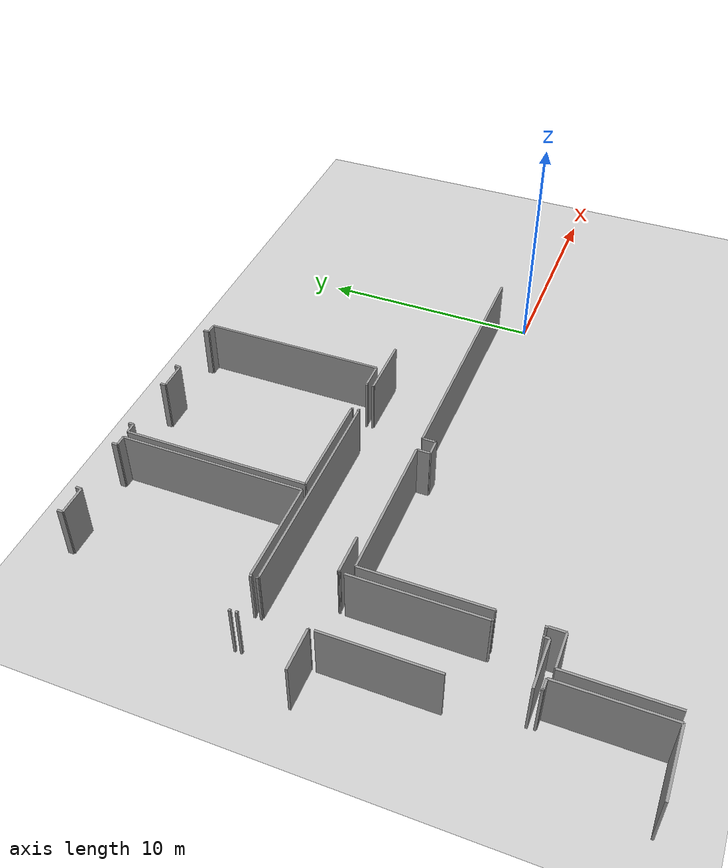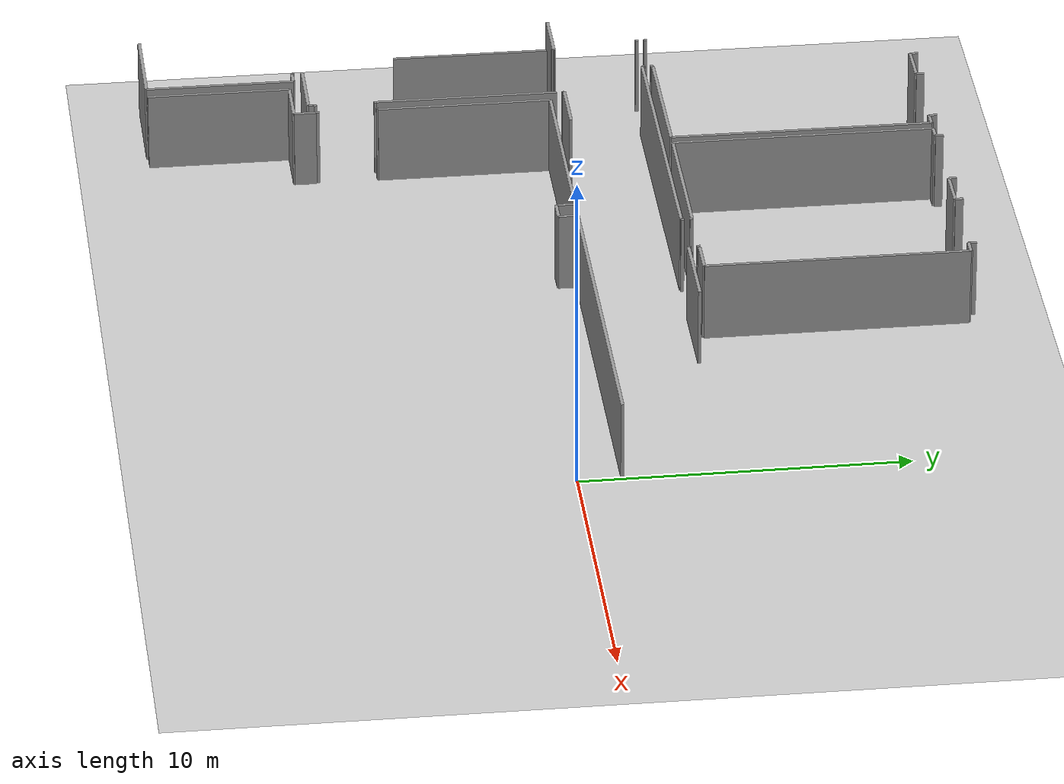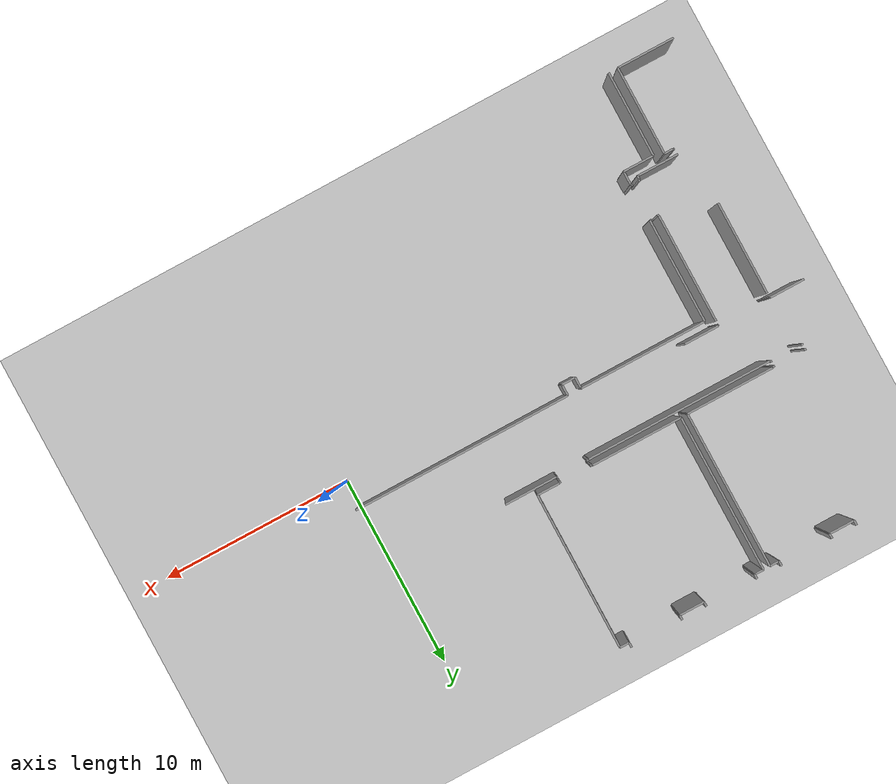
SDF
<sdf version="1.6">
 <world name="default">
  <model name="ground_plane">
   <static>1</static>
   <link name="link">
    <collision name="collision">
     <geometry><plane><normal>0 0 1</normal><size>100 100</size></plane></geometry>
     <surface><friction><ode><mu>100</mu><mu2>50</mu2></ode></friction></surface>
    </collision>
    <visual name="visual">
     <cast_shadows>0</cast_shadows>
     <geometry><plane><normal>0 0 1</normal><size>100 100</size></plane></geometry>
     <material>
      <script><uri>file://media/materials/scripts/gazebo.material</uri><name>Gazebo/Grey</name></script>
     </material>
    </visual>
   </link>
  </model>
  <model name="0510032258_A_40_1_105">
   <static>1</static>
   <link name="Wall_70">
    <collision name="Wall_70_Collision">
     <geometry><box><size>4.83623843887 0.1 2.5</size></box></geometry>
     <pose>2.41811921943 0 1.25 0 0 0</pose>
    </collision>
    <visual name="Wall_70_Visual">
     <pose>2.41811921943 0 1.25 0 0 0</pose>
     <geometry><box><size>4.83623843887 0.1 2.5</size></box></geometry>
     <material>
      <script><uri>file://media/materials/scripts/gazebo.material</uri><name>Gazebo/Grey</name></script>
      <ambient>1 1 1 1</ambient>
     </material>
    </visual>
    <pose>26.022080496 -16.3927990649 0 0 0 1.57079632679</pose>
   </link>
   <link name="Wall_71">
    <collision name="Wall_71_Collision">
     <geometry><box><size>5.62811261307 0.1 2.5</size></box></geometry>
     <pose>2.81405630654 0 1.25 0 0 0</pose>
    </collision>
    <visual name="Wall_71_Visual">
     <pose>2.81405630654 0 1.25 0 0 0</pose>
     <geometry><box><size>5.62811261307 0.1 2.5</size></box></geometry>
     <material>
      <script><uri>file://media/materials/scripts/gazebo.material</uri><name>Gazebo/Grey</name></script>
      <ambient>1 1 1 1</ambient>
     </material>
    </visual>
    <pose>28.7493647728 -11.5565606261 0 0 0 -1.57079632679</pose>
   </link>
   <link name="Wall_72">
    <collision name="Wall_72_Collision">
     <geometry><box><size>0.0212165870515 0.1 2.5</size></box></geometry>
     <pose>0.0106082935258 0 1.25 0 0 0</pose>
    </collision>
    <visual name="Wall_72_Visual">
     <pose>0.0106082935258 0 1.25 0 0 0</pose>
     <geometry><box><size>0.0212165870515 0.1 2.5</size></box></geometry>
     <material>
      <script><uri>file://media/materials/scripts/gazebo.material</uri><name>Gazebo/Grey</name></script>
      <ambient>1 1 1 1</ambient>
     </material>
    </visual>
    <pose>28.7493647728 -17.1846732392 0 0 0 0.0</pose>
   </link>
   <link name="Wall_73">
    <collision name="Wall_73_Collision">
     <geometry><box><size>0.0806738489684 0.1 2.5</size></box></geometry>
     <pose>0.0403369244842 0 1.25 0 0 0</pose>
    </collision>
    <visual name="Wall_73_Visual">
     <pose>0.0403369244842 0 1.25 0 0 0</pose>
     <geometry><box><size>0.0806738489684 0.1 2.5</size></box></geometry>
     <material>
      <script><uri>file://media/materials/scripts/gazebo.material</uri><name>Gazebo/Grey</name></script>
      <ambient>1 1 1 1</ambient>
     </material>
    </visual>
    <pose>28.7705813599 -17.1846732392 0 0 0 -1.57079632679</pose>
   </link>
   <link name="Wall_74">
    <collision name="Wall_74_Collision">
     <geometry><box><size>0.0815631669885 0.1 2.5</size></box></geometry>
     <pose>0.0407815834943 0 1.25 0 0 0</pose>
    </collision>
    <visual name="Wall_74_Visual">
     <pose>0.0407815834943 0 1.25 0 0 0</pose>
     <geometry><box><size>0.0815631669885 0.1 2.5</size></box></geometry>
     <material>
      <script><uri>file://media/materials/scripts/gazebo.material</uri><name>Gazebo/Grey</name></script>
      <ambient>1 1 1 1</ambient>
     </material>
    </visual>
    <pose>28.7705813599 -19.0433479012 0 0 0 -1.57079632679</pose>
   </link>
   <link name="Wall_75">
    <collision name="Wall_75_Collision">
     <geometry><box><size>0.0282040857811 0.1 2.5</size></box></geometry>
     <pose>0.0141020428905 0 1.25 0 0 0</pose>
    </collision>
    <visual name="Wall_75_Visual">
     <pose>0.0141020428905 0 1.25 0 0 0</pose>
     <geometry><box><size>0.0282040857811 0.1 2.5</size></box></geometry>
     <material>
      <script><uri>file://media/materials/scripts/gazebo.material</uri><name>Gazebo/Grey</name></script>
      <ambient>1 1 1 1</ambient>
     </material>
    </visual>
    <pose>28.7705813599 -19.1249110682 0 0 0 3.14159265359</pose>
   </link>
   <link name="Wall_76">
    <collision name="Wall_76_Collision">
     <geometry><box><size>0.179007012908 0.1 2.5</size></box></geometry>
     <pose>0.0895035064539 0 1.25 0 0 0</pose>
    </collision>
    <visual name="Wall_76_Visual">
     <pose>0.0895035064539 0 1.25 0 0 0</pose>
     <geometry><box><size>0.179007012908 0.1 2.5</size></box></geometry>
     <material>
      <script><uri>file://media/materials/scripts/gazebo.material</uri><name>Gazebo/Grey</name></script>
      <ambient>1 1 1 1</ambient>
     </material>
    </visual>
    <pose>28.7423772741 -19.1249110682 0 0 0 -1.57079632679</pose>
   </link>
   <link name="Wall_77">
    <collision name="Wall_77_Collision">
     <geometry><box><size>2.16320256124 0.1 2.5</size></box></geometry>
     <pose>1.08160128062 0 1.25 0 0 0</pose>
    </collision>
    <visual name="Wall_77_Visual">
     <pose>1.08160128062 0 1.25 0 0 0</pose>
     <geometry><box><size>2.16320256124 0.1 2.5</size></box></geometry>
     <material>
      <script><uri>file://media/materials/scripts/gazebo.material</uri><name>Gazebo/Grey</name></script>
      <ambient>1 1 1 1</ambient>
     </material>
    </visual>
    <pose>28.7423772741 -19.3039180811 0 0 0 3.14159265359</pose>
   </link>
   <link name="Wall_93">
    <collision name="Wall_93_Collision">
     <geometry><box><size>0.0722888504929 0.1 2.5</size></box></geometry>
     <pose>0.0361444252465 0 1.25 0 0 0</pose>
    </collision>
    <visual name="Wall_93_Visual">
     <pose>0.0361444252465 0 1.25 0 0 0</pose>
     <geometry><box><size>0.0722888504929 0.1 2.5</size></box></geometry>
     <material>
      <script><uri>file://media/materials/scripts/gazebo.material</uri><name>Gazebo/Grey</name></script>
      <ambient>1 1 1 1</ambient>
     </material>
    </visual>
    <pose>26.6078869804 -19.6111139343 0 0 0 0.0</pose>
   </link>
   <link name="Wall_94">
    <collision name="Wall_94_Collision">
     <geometry><box><size>0.0188027238541 0.1 2.5</size></box></geometry>
     <pose>0.00940136192703 0 1.25 0 0 0</pose>
    </collision>
    <visual name="Wall_94_Visual">
     <pose>0.00940136192703 0 1.25 0 0 0</pose>
     <geometry><box><size>0.0188027238541 0.1 2.5</size></box></geometry>
     <material>
      <script><uri>file://media/materials/scripts/gazebo.material</uri><name>Gazebo/Grey</name></script>
      <ambient>1 1 1 1</ambient>
     </material>
    </visual>
    <pose>26.6801758309 -19.6111139343 0 0 0 -1.57079632679</pose>
   </link>
   <link name="Wall_95">
    <collision name="Wall_95_Collision">
     <geometry><box><size>0.451392417929 0.1 2.5</size></box></geometry>
     <pose>0.225696208964 0 1.25 0 0 0</pose>
    </collision>
    <visual name="Wall_95_Visual">
     <pose>0.225696208964 0 1.25 0 0 0</pose>
     <geometry><box><size>0.451392417929 0.1 2.5</size></box></geometry>
     <material>
      <script><uri>file://media/materials/scripts/gazebo.material</uri><name>Gazebo/Grey</name></script>
      <ambient>1 1 1 1</ambient>
     </material>
    </visual>
    <pose>26.6801758309 -19.6299166582 0 0 0 0.0</pose>
   </link>
   <link name="Wall_96">
    <collision name="Wall_96_Collision">
     <geometry><box><size>4.58646712064 0.1 2.5</size></box></geometry>
     <pose>2.29323356032 0 1.25 0 0 0</pose>
    </collision>
    <visual name="Wall_96_Visual">
     <pose>2.29323356032 0 1.25 0 0 0</pose>
     <geometry><box><size>4.58646712064 0.1 2.5</size></box></geometry>
     <material>
      <script><uri>file://media/materials/scripts/gazebo.material</uri><name>Gazebo/Grey</name></script>
      <ambient>1 1 1 1</ambient>
     </material>
    </visual>
    <pose>27.1315682488 -19.6299166582 0 0 0 -1.57079632679</pose>
   </link>
   <link name="Wall_97">
    <collision name="Wall_97_Collision">
     <geometry><box><size>2.97261009093 0.1 2.5</size></box></geometry>
     <pose>1.48630504547 0 1.25 0 0 0</pose>
    </collision>
    <visual name="Wall_97_Visual">
     <pose>1.48630504547 0 1.25 0 0 0</pose>
     <geometry><box><size>2.97261009093 0.1 2.5</size></box></geometry>
     <material>
      <script><uri>file://media/materials/scripts/gazebo.material</uri><name>Gazebo/Grey</name></script>
      <ambient>1 1 1 1</ambient>
     </material>
    </visual>
    <pose>27.1315682488 -24.2163837788 0 0 0 3.14073787989</pose>
   </link>
   <link name="Wall_137">
    <collision name="Wall_137_Collision">
     <geometry><box><size>4.41775078768 0.1 2.5</size></box></geometry>
     <pose>2.20887539384 0 1.25 0 0 0</pose>
    </collision>
    <visual name="Wall_137_Visual">
     <pose>2.20887539384 0 1.25 0 0 0</pose>
     <geometry><box><size>4.41775078768 0.1 2.5</size></box></geometry>
     <material>
      <script><uri>file://media/materials/scripts/gazebo.material</uri><name>Gazebo/Grey</name></script>
      <ambient>1 1 1 1</ambient>
     </material>
    </visual>
    <pose>27.6227258868 -24.2157485517 0 0 0 1.57079632679</pose>
   </link>
   <link name="Wall_138">
    <collision name="Wall_138_Collision">
     <geometry><box><size>1.59175221059 0.1 2.5</size></box></geometry>
     <pose>0.795876105295 0 1.25 0 0 0</pose>
    </collision>
    <visual name="Wall_138_Visual">
     <pose>0.795876105295 0 1.25 0 0 0</pose>
     <geometry><box><size>1.59175221059 0.1 2.5</size></box></geometry>
     <material>
      <script><uri>file://media/materials/scripts/gazebo.material</uri><name>Gazebo/Grey</name></script>
      <ambient>1 1 1 1</ambient>
     </material>
    </visual>
    <pose>27.6227258868 -19.797997764 0 0 0 0.0</pose>
   </link>
   <link name="Wall_139">
    <collision name="Wall_139_Collision">
     <geometry><box><size>0.687569874987 0.1 2.5</size></box></geometry>
     <pose>0.343784937494 0 1.25 0 0 0</pose>
    </collision>
    <visual name="Wall_139_Visual">
     <pose>0.343784937494 0 1.25 0 0 0</pose>
     <geometry><box><size>0.687569874987 0.1 2.5</size></box></geometry>
     <material>
      <script><uri>file://media/materials/scripts/gazebo.material</uri><name>Gazebo/Grey</name></script>
      <ambient>1 1 1 1</ambient>
     </material>
    </visual>
    <pose>29.2144780974 -19.797997764 0 0 0 1.57079632679</pose>
   </link>
   <link name="Wall_140">
    <collision name="Wall_140_Collision">
     <geometry><box><size>0.0354456753735 0.1 2.5</size></box></geometry>
     <pose>0.0177228376868 0 1.25 0 0 0</pose>
    </collision>
    <visual name="Wall_140_Visual">
     <pose>0.0177228376868 0 1.25 0 0 0</pose>
     <geometry><box><size>0.0354456753735 0.1 2.5</size></box></geometry>
     <material>
      <script><uri>file://media/materials/scripts/gazebo.material</uri><name>Gazebo/Grey</name></script>
      <ambient>1 1 1 1</ambient>
     </material>
    </visual>
    <pose>29.2144780974 -19.110427889 0 0 0 3.14159265359</pose>
   </link>
   <link name="Wall_141">
    <collision name="Wall_141_Collision">
     <geometry><box><size>0.102144526883 0.1 2.5</size></box></geometry>
     <pose>0.0510722634414 0 1.25 0 0 0</pose>
    </collision>
    <visual name="Wall_141_Visual">
     <pose>0.0510722634414 0 1.25 0 0 0</pose>
     <geometry><box><size>0.102144526883 0.1 2.5</size></box></geometry>
     <material>
      <script><uri>file://media/materials/scripts/gazebo.material</uri><name>Gazebo/Grey</name></script>
      <ambient>1 1 1 1</ambient>
     </material>
    </visual>
    <pose>29.179032422 -19.110427889 0 0 0 1.57079632679</pose>
   </link>
   <link name="Wall_142">
    <collision name="Wall_142_Collision">
     <geometry><box><size>0.0491665819697 0.1 2.5</size></box></geometry>
     <pose>0.0245832909849 0 1.25 0 0 0</pose>
    </collision>
    <visual name="Wall_142_Visual">
     <pose>0.0245832909849 0 1.25 0 0 0</pose>
     <geometry><box><size>0.0491665819697 0.1 2.5</size></box></geometry>
     <material>
      <script><uri>file://media/materials/scripts/gazebo.material</uri><name>Gazebo/Grey</name></script>
      <ambient>1 1 1 1</ambient>
     </material>
    </visual>
    <pose>29.179032422 -17.2310448216 0 0 0 1.57079632679</pose>
   </link>
   <link name="Wall_143">
    <collision name="Wall_143_Collision">
     <geometry><box><size>0.0434495375546 0.1 2.5</size></box></geometry>
     <pose>0.0217247687773 0 1.25 0 0 0</pose>
    </collision>
    <visual name="Wall_143_Visual">
     <pose>0.0217247687773 0 1.25 0 0 0</pose>
     <geometry><box><size>0.0434495375546 0.1 2.5</size></box></geometry>
     <material>
      <script><uri>file://media/materials/scripts/gazebo.material</uri><name>Gazebo/Grey</name></script>
      <ambient>1 1 1 1</ambient>
     </material>
    </visual>
    <pose>29.179032422 -17.1818782397 0 0 0 0.0</pose>
   </link>
   <link name="Wall_144">
    <collision name="Wall_144_Collision">
     <geometry><box><size>5.38024697632 0.1 2.5</size></box></geometry>
     <pose>2.69012348816 0 1.25 0 0 0</pose>
    </collision>
    <visual name="Wall_144_Visual">
     <pose>2.69012348816 0 1.25 0 0 0</pose>
     <geometry><box><size>5.38024697632 0.1 2.5</size></box></geometry>
     <material>
      <script><uri>file://media/materials/scripts/gazebo.material</uri><name>Gazebo/Grey</name></script>
      <ambient>1 1 1 1</ambient>
     </material>
    </visual>
    <pose>29.2224819595 -17.1818782397 0 0 0 1.57079632679</pose>
   </link>
   <link name="Wall_145">
    <collision name="Wall_145_Collision">
     <geometry><box><size>6.60458379917 0.1 2.5</size></box></geometry>
     <pose>3.30229189958 0 1.25 0 0 0</pose>
    </collision>
    <visual name="Wall_145_Visual">
     <pose>3.30229189958 0 1.25 0 0 0</pose>
     <geometry><box><size>6.60458379917 0.1 2.5</size></box></geometry>
     <material>
      <script><uri>file://media/materials/scripts/gazebo.material</uri><name>Gazebo/Grey</name></script>
      <ambient>1 1 1 1</ambient>
     </material>
    </visual>
    <pose>29.2224819595 -11.8016312633 0 0 0 0.0</pose>
   </link>
   <link name="Wall_146">
    <collision name="Wall_146_Collision">
     <geometry><box><size>0.58237625775 0.1 2.5</size></box></geometry>
     <pose>0.291188128875 0 1.25 0 0 0</pose>
    </collision>
    <visual name="Wall_146_Visual">
     <pose>0.291188128875 0 1.25 0 0 0</pose>
     <geometry><box><size>0.58237625775 0.1 2.5</size></box></geometry>
     <material>
      <script><uri>file://media/materials/scripts/gazebo.material</uri><name>Gazebo/Grey</name></script>
      <ambient>1 1 1 1</ambient>
     </material>
    </visual>
    <pose>35.8270657587 -11.8016312633 0 0 0 -1.57079632679</pose>
   </link>
   <link name="Wall_147">
    <collision name="Wall_147_Collision">
     <geometry><box><size>0.702942372192 0.1 2.5</size></box></geometry>
     <pose>0.351471186096 0 1.25 0 0 0</pose>
    </collision>
    <visual name="Wall_147_Visual">
     <pose>0.351471186096 0 1.25 0 0 0</pose>
     <geometry><box><size>0.702942372192 0.1 2.5</size></box></geometry>
     <material>
      <script><uri>file://media/materials/scripts/gazebo.material</uri><name>Gazebo/Grey</name></script>
      <ambient>1 1 1 1</ambient>
     </material>
    </visual>
    <pose>35.8270657587 -12.3840075211 0 0 0 0.0</pose>
   </link>
   <link name="Wall_148">
    <collision name="Wall_148_Collision">
     <geometry><box><size>0.581359894298 0.1 2.5</size></box></geometry>
     <pose>0.290679947149 0 1.25 0 0 0</pose>
    </collision>
    <visual name="Wall_148_Visual">
     <pose>0.290679947149 0 1.25 0 0 0</pose>
     <geometry><box><size>0.581359894298 0.1 2.5</size></box></geometry>
     <material>
      <script><uri>file://media/materials/scripts/gazebo.material</uri><name>Gazebo/Grey</name></script>
      <ambient>1 1 1 1</ambient>
     </material>
    </visual>
    <pose>36.5300081309 -12.3840075211 0 0 0 1.57079632679</pose>
   </link>
   <link name="Wall_149">
    <collision name="Wall_149_Collision">
     <geometry><box><size>11.3100924891 0.1 2.5</size></box></geometry>
     <pose>5.65504624454 0 1.25 0 0 0</pose>
    </collision>
    <visual name="Wall_149_Visual">
     <pose>5.65504624454 0 1.25 0 0 0</pose>
     <geometry><box><size>11.3100924891 0.1 2.5</size></box></geometry>
     <material>
      <script><uri>file://media/materials/scripts/gazebo.material</uri><name>Gazebo/Grey</name></script>
      <ambient>1 1 1 1</ambient>
     </material>
    </visual>
    <pose>36.5300081309 -11.8026476268 0 0 0 0.0</pose>
   </link>
   <link name="Wall_281">
    <collision name="Wall_281_Collision">
     <geometry><box><size>0.253074499441 0.1 2.5</size></box></geometry>
     <pose>0.126537249721 0 1.25 0 0 0</pose>
    </collision>
    <visual name="Wall_281_Visual">
     <pose>0.126537249721 0 1.25 0 0 0</pose>
     <geometry><box><size>0.253074499441 0.1 2.5</size></box></geometry>
     <material>
      <script><uri>file://media/materials/scripts/gazebo.material</uri><name>Gazebo/Grey</name></script>
      <ambient>1 1 1 1</ambient>
     </material>
    </visual>
    <pose>27.5186756784 -0.0124504522817 0 0 0 -1.57079632679</pose>
   </link>
   <link name="Wall_282">
    <collision name="Wall_282_Collision">
     <geometry><box><size>1.31390385202 0.1 2.5</size></box></geometry>
     <pose>0.656951926009 0 1.25 0 0 0</pose>
    </collision>
    <visual name="Wall_282_Visual">
     <pose>0.656951926009 0 1.25 0 0 0</pose>
     <geometry><box><size>1.31390385202 0.1 2.5</size></box></geometry>
     <material>
      <script><uri>file://media/materials/scripts/gazebo.material</uri><name>Gazebo/Grey</name></script>
      <ambient>1 1 1 1</ambient>
     </material>
    </visual>
    <pose>27.5186756784 -0.265524951723 0 0 0 0.0</pose>
   </link>
   <link name="Wall_283">
    <collision name="Wall_283_Collision">
     <geometry><box><size>0.252820408578 0.1 2.5</size></box></geometry>
     <pose>0.126410204289 0 1.25 0 0 0</pose>
    </collision>
    <visual name="Wall_283_Visual">
     <pose>0.126410204289 0 1.25 0 0 0</pose>
     <geometry><box><size>0.252820408578 0.1 2.5</size></box></geometry>
     <material>
      <script><uri>file://media/materials/scripts/gazebo.material</uri><name>Gazebo/Grey</name></script>
      <ambient>1 1 1 1</ambient>
     </material>
    </visual>
    <pose>28.8325795304 -0.265524951723 0 0 0 1.57079632679</pose>
   </link>
   <link name="Wall_284">
    <collision name="Wall_284_Collision">
     <geometry><box><size>0.252820408578 0.1 2.5</size></box></geometry>
     <pose>0.126410204289 0 1.25 0 0 0</pose>
    </collision>
    <visual name="Wall_284_Visual">
     <pose>0.126410204289 0 1.25 0 0 0</pose>
     <geometry><box><size>0.252820408578 0.1 2.5</size></box></geometry>
     <material>
      <script><uri>file://media/materials/scripts/gazebo.material</uri><name>Gazebo/Grey</name></script>
      <ambient>1 1 1 1</ambient>
     </material>
    </visual>
    <pose>31.5267049497 -0.0127045431446 0 0 0 -1.57079632679</pose>
   </link>
   <link name="Wall_285">
    <collision name="Wall_285_Collision">
     <geometry><box><size>0.483916048379 0.1 2.5</size></box></geometry>
     <pose>0.241958024189 0 1.25 0 0 0</pose>
    </collision>
    <visual name="Wall_285_Visual">
     <pose>0.241958024189 0 1.25 0 0 0</pose>
     <geometry><box><size>0.483916048379 0.1 2.5</size></box></geometry>
     <material>
      <script><uri>file://media/materials/scripts/gazebo.material</uri><name>Gazebo/Grey</name></script>
      <ambient>1 1 1 1</ambient>
     </material>
    </visual>
    <pose>31.5267049497 -0.265524951723 0 0 0 0.0</pose>
   </link>
   <link name="Wall_286">
    <collision name="Wall_286_Collision">
     <geometry><box><size>8.10994511637 0.1 2.5</size></box></geometry>
     <pose>4.05497255819 0 1.25 0 0 0</pose>
    </collision>
    <visual name="Wall_286_Visual">
     <pose>4.05497255819 0 1.25 0 0 0</pose>
     <geometry><box><size>8.10994511637 0.1 2.5</size></box></geometry>
     <material>
      <script><uri>file://media/materials/scripts/gazebo.material</uri><name>Gazebo/Grey</name></script>
      <ambient>1 1 1 1</ambient>
     </material>
    </visual>
    <pose>32.0106209981 -0.265524951723 0 0 0 -1.57079632679</pose>
   </link>
   <link name="Wall_287">
    <collision name="Wall_287_Collision">
     <geometry><box><size>4.56741030593 0.1 2.5</size></box></geometry>
     <pose>2.28370515296 0 1.25 0 0 0</pose>
    </collision>
    <visual name="Wall_287_Visual">
     <pose>2.28370515296 0 1.25 0 0 0</pose>
     <geometry><box><size>4.56741030593 0.1 2.5</size></box></geometry>
     <material>
      <script><uri>file://media/materials/scripts/gazebo.material</uri><name>Gazebo/Grey</name></script>
      <ambient>1 1 1 1</ambient>
     </material>
    </visual>
    <pose>32.0106209981 -8.3754700681 0 0 0 3.14159265359</pose>
   </link>
   <link name="Wall_288">
    <collision name="Wall_288_Collision">
     <geometry><box><size>0.027314767761 0.1 2.5</size></box></geometry>
     <pose>0.0136573838805 0 1.25 0 0 0</pose>
    </collision>
    <visual name="Wall_288_Visual">
     <pose>0.0136573838805 0 1.25 0 0 0</pose>
     <geometry><box><size>0.027314767761 0.1 2.5</size></box></geometry>
     <material>
      <script><uri>file://media/materials/scripts/gazebo.material</uri><name>Gazebo/Grey</name></script>
      <ambient>1 1 1 1</ambient>
     </material>
    </visual>
    <pose>27.4432106921 -8.3754700681 0 0 0 -1.57079632679</pose>
   </link>
   <link name="Wall_289">
    <collision name="Wall_289_Collision">
     <geometry><box><size>0.108623843887 0.1 2.5</size></box></geometry>
     <pose>0.0543119219433 0 1.25 0 0 0</pose>
    </collision>
    <visual name="Wall_289_Visual">
     <pose>0.0543119219433 0 1.25 0 0 0</pose>
     <geometry><box><size>0.108623843887 0.1 2.5</size></box></geometry>
     <material>
      <script><uri>file://media/materials/scripts/gazebo.material</uri><name>Gazebo/Grey</name></script>
      <ambient>1 1 1 1</ambient>
     </material>
    </visual>
    <pose>27.4432106921 -8.40278483586 0 0 0 3.14159265359</pose>
   </link>
   <link name="Wall_290">
    <collision name="Wall_290_Collision">
     <geometry><box><size>0.0938865738388 0.1 2.5</size></box></geometry>
     <pose>0.0469432869194 0 1.25 0 0 0</pose>
    </collision>
    <visual name="Wall_290_Visual">
     <pose>0.0469432869194 0 1.25 0 0 0</pose>
     <geometry><box><size>0.0938865738388 0.1 2.5</size></box></geometry>
     <material>
      <script><uri>file://media/materials/scripts/gazebo.material</uri><name>Gazebo/Grey</name></script>
      <ambient>1 1 1 1</ambient>
     </material>
    </visual>
    <pose>25.7592234983 -8.40278483586 0 0 0 3.14159265359</pose>
   </link>
   <link name="Wall_293">
    <collision name="Wall_293_Collision">
     <geometry><box><size>8.1011789816 0.1 2.5</size></box></geometry>
     <pose>4.0505894908 0 1.25 0 0 0</pose>
    </collision>
    <visual name="Wall_293_Visual">
     <pose>4.0505894908 0 1.25 0 0 0</pose>
     <geometry><box><size>8.1011789816 0.1 2.5</size></box></geometry>
     <material>
      <script><uri>file://media/materials/scripts/gazebo.material</uri><name>Gazebo/Grey</name></script>
      <ambient>1 1 1 1</ambient>
     </material>
    </visual>
    <pose>32.3538977538 -8.36606870617 0 0 0 1.57079632679</pose>
   </link>
   <link name="Wall_294">
    <collision name="Wall_294_Collision">
     <geometry><box><size>0.473244232137 0.1 2.5</size></box></geometry>
     <pose>0.236622116069 0 1.25 0 0 0</pose>
    </collision>
    <visual name="Wall_294_Visual">
     <pose>0.236622116069 0 1.25 0 0 0</pose>
     <geometry><box><size>0.473244232137 0.1 2.5</size></box></geometry>
     <material>
      <script><uri>file://media/materials/scripts/gazebo.material</uri><name>Gazebo/Grey</name></script>
      <ambient>1 1 1 1</ambient>
     </material>
    </visual>
    <pose>32.3538977538 -0.264889724566 0 0 0 0.0</pose>
   </link>
   <link name="Wall_295">
    <collision name="Wall_295_Collision">
     <geometry><box><size>0.248500863909 0.1 2.5</size></box></geometry>
     <pose>0.124250431954 0 1.25 0 0 0</pose>
    </collision>
    <visual name="Wall_295_Visual">
     <pose>0.124250431954 0 1.25 0 0 0</pose>
     <geometry><box><size>0.248500863909 0.1 2.5</size></box></geometry>
     <material>
      <script><uri>file://media/materials/scripts/gazebo.material</uri><name>Gazebo/Grey</name></script>
      <ambient>1 1 1 1</ambient>
     </material>
    </visual>
    <pose>32.827141986 -0.264889724566 0 0 0 1.57079632679</pose>
   </link>
   <link name="Wall_296">
    <collision name="Wall_296_Collision">
     <geometry><box><size>0.242910864925 0.1 2.5</size></box></geometry>
     <pose>0.121455432463 0 1.25 0 0 0</pose>
    </collision>
    <visual name="Wall_296_Visual">
     <pose>0.121455432463 0 1.25 0 0 0</pose>
     <geometry><box><size>0.242910864925 0.1 2.5</size></box></geometry>
     <material>
      <script><uri>file://media/materials/scripts/gazebo.material</uri><name>Gazebo/Grey</name></script>
      <ambient>1 1 1 1</ambient>
     </material>
    </visual>
    <pose>35.5277467222 -0.0163888606566 0 0 0 -1.57079632679</pose>
   </link>
   <link name="Wall_297">
    <collision name="Wall_297_Collision">
     <geometry><box><size>1.29878544568 0.1 2.5</size></box></geometry>
     <pose>0.649392722838 0 1.25 0 0 0</pose>
    </collision>
    <visual name="Wall_297_Visual">
     <pose>0.649392722838 0 1.25 0 0 0</pose>
     <geometry><box><size>1.29878544568 0.1 2.5</size></box></geometry>
     <material>
      <script><uri>file://media/materials/scripts/gazebo.material</uri><name>Gazebo/Grey</name></script>
      <ambient>1 1 1 1</ambient>
     </material>
    </visual>
    <pose>35.5277467222 -0.259299725582 0 0 0 0.0</pose>
   </link>
   <link name="Wall_298">
    <collision name="Wall_298_Collision">
     <geometry><box><size>0.249898363655 0.1 2.5</size></box></geometry>
     <pose>0.124949181827 0 1.25 0 0 0</pose>
    </collision>
    <visual name="Wall_298_Visual">
     <pose>0.124949181827 0 1.25 0 0 0</pose>
     <geometry><box><size>0.249898363655 0.1 2.5</size></box></geometry>
     <material>
      <script><uri>file://media/materials/scripts/gazebo.material</uri><name>Gazebo/Grey</name></script>
      <ambient>1 1 1 1</ambient>
     </material>
    </visual>
    <pose>36.8265321679 -0.259299725582 0 0 0 1.57079632679</pose>
   </link>
   <link name="Wall_299">
    <collision name="Wall_299_Collision">
     <geometry><box><size>0.251676999695 0.1 2.5</size></box></geometry>
     <pose>0.125838499848 0 1.25 0 0 0</pose>
    </collision>
    <visual name="Wall_299_Visual">
     <pose>0.125838499848 0 1.25 0 0 0</pose>
     <geometry><box><size>0.251676999695 0.1 2.5</size></box></geometry>
     <material>
      <script><uri>file://media/materials/scripts/gazebo.material</uri><name>Gazebo/Grey</name></script>
      <ambient>1 1 1 1</ambient>
     </material>
    </visual>
    <pose>39.5251041773 -0.00940136192703 0 0 0 -1.57079632679</pose>
   </link>
   <link name="Wall_300">
    <collision name="Wall_300_Collision">
     <geometry><box><size>0.482010366907 0.1 2.5</size></box></geometry>
     <pose>0.241005183454 0 1.25 0 0 0</pose>
    </collision>
    <visual name="Wall_300_Visual">
     <pose>0.241005183454 0 1.25 0 0 0</pose>
     <geometry><box><size>0.482010366907 0.1 2.5</size></box></geometry>
     <material>
      <script><uri>file://media/materials/scripts/gazebo.material</uri><name>Gazebo/Grey</name></script>
      <ambient>1 1 1 1</ambient>
     </material>
    </visual>
    <pose>39.5251041773 -0.261078361622 0 0 0 0.0</pose>
   </link>
   <link name="Wall_301">
    <collision name="Wall_301_Collision">
     <geometry><box><size>8.11388352475 0.1 2.5</size></box></geometry>
     <pose>4.05694176237 0 1.25 0 0 0</pose>
    </collision>
    <visual name="Wall_301_Visual">
     <pose>4.05694176237 0 1.25 0 0 0</pose>
     <geometry><box><size>8.11388352475 0.1 2.5</size></box></geometry>
     <material>
      <script><uri>file://media/materials/scripts/gazebo.material</uri><name>Gazebo/Grey</name></script>
      <ambient>1 1 1 1</ambient>
     </material>
    </visual>
    <pose>40.0071145442 -0.261078361622 0 0 0 -1.57079632679</pose>
   </link>
   <link name="Wall_302">
    <collision name="Wall_302_Collision">
     <geometry><box><size>1.16830978758 0.1 2.5</size></box></geometry>
     <pose>0.58415489379 0 1.25 0 0 0</pose>
    </collision>
    <visual name="Wall_302_Visual">
     <pose>0.58415489379 0 1.25 0 0 0</pose>
     <geometry><box><size>1.16830978758 0.1 2.5</size></box></geometry>
     <material>
      <script><uri>file://media/materials/scripts/gazebo.material</uri><name>Gazebo/Grey</name></script>
      <ambient>1 1 1 1</ambient>
     </material>
    </visual>
    <pose>40.0071145442 -8.37496188637 0 0 0 3.14159265359</pose>
   </link>
   <link name="Wall_303">
    <collision name="Wall_303_Collision">
     <geometry><box><size>0.0237574956805 0.1 2.5</size></box></geometry>
     <pose>0.0118787478402 0 1.25 0 0 0</pose>
    </collision>
    <visual name="Wall_303_Visual">
     <pose>0.0118787478402 0 1.25 0 0 0</pose>
     <geometry><box><size>0.0237574956805 0.1 2.5</size></box></geometry>
     <material>
      <script><uri>file://media/materials/scripts/gazebo.material</uri><name>Gazebo/Grey</name></script>
      <ambient>1 1 1 1</ambient>
     </material>
    </visual>
    <pose>38.8388047566 -8.37496188637 0 0 0 -1.57079632679</pose>
   </link>
   <link name="Wall_304">
    <collision name="Wall_304_Collision">
     <geometry><box><size>0.0950299827218 0.1 2.5</size></box></geometry>
     <pose>0.0475149913609 0 1.25 0 0 0</pose>
    </collision>
    <visual name="Wall_304_Visual">
     <pose>0.0475149913609 0 1.25 0 0 0</pose>
     <geometry><box><size>0.0950299827218 0.1 2.5</size></box></geometry>
     <material>
      <script><uri>file://media/materials/scripts/gazebo.material</uri><name>Gazebo/Grey</name></script>
      <ambient>1 1 1 1</ambient>
     </material>
    </visual>
    <pose>38.8388047566 -8.39871938205 0 0 0 3.14159265359</pose>
   </link>
   <link name="Wall_305">
    <collision name="Wall_305_Collision">
     <geometry><box><size>0.10366907206 0.1 2.5</size></box></geometry>
     <pose>0.0518345360301 0 1.25 0 0 0</pose>
    </collision>
    <visual name="Wall_305_Visual">
     <pose>0.0518345360301 0 1.25 0 0 0</pose>
     <geometry><box><size>0.10366907206 0.1 2.5</size></box></geometry>
     <material>
      <script><uri>file://media/materials/scripts/gazebo.material</uri><name>Gazebo/Grey</name></script>
      <ambient>1 1 1 1</ambient>
     </material>
    </visual>
    <pose>37.1806077853 -8.39871938205 0 0 0 3.14159265359</pose>
   </link>
   <link name="Wall_306">
    <collision name="Wall_306_Collision">
     <geometry><box><size>0.0232493139547 0.1 2.5</size></box></geometry>
     <pose>0.0116246569773 0 1.25 0 0 0</pose>
    </collision>
    <visual name="Wall_306_Visual">
     <pose>0.0116246569773 0 1.25 0 0 0</pose>
     <geometry><box><size>0.0232493139547 0.1 2.5</size></box></geometry>
     <material>
      <script><uri>file://media/materials/scripts/gazebo.material</uri><name>Gazebo/Grey</name></script>
      <ambient>1 1 1 1</ambient>
     </material>
    </visual>
    <pose>37.0769387133 -8.39871938205 0 0 0 1.57079632679</pose>
   </link>
   <link name="Wall_307">
    <collision name="Wall_307_Collision">
     <geometry><box><size>4.72305031629 0.1 2.5</size></box></geometry>
     <pose>2.36152515815 0 1.25 0 0 0</pose>
    </collision>
    <visual name="Wall_307_Visual">
     <pose>2.36152515815 0 1.25 0 0 0</pose>
     <geometry><box><size>4.72305031629 0.1 2.5</size></box></geometry>
     <material>
      <script><uri>file://media/materials/scripts/gazebo.material</uri><name>Gazebo/Grey</name></script>
      <ambient>1 1 1 1</ambient>
     </material>
    </visual>
    <pose>37.0769387133 -8.3754700681 0 0 0 3.13960212469</pose>
   </link>
   <link name="Wall_352">
    <collision name="Wall_352_Collision">
     <geometry><box><size>1.78460717553 0.1 2.5</size></box></geometry>
     <pose>0.892303587763 0 1.25 0 0 0</pose>
    </collision>
    <visual name="Wall_352_Visual">
     <pose>0.892303587763 0 1.25 0 0 0</pose>
     <geometry><box><size>1.78460717553 0.1 2.5</size></box></geometry>
     <material>
      <script><uri>file://media/materials/scripts/gazebo.material</uri><name>Gazebo/Grey</name></script>
      <ambient>1 1 1 1</ambient>
     </material>
    </visual>
    <pose>30.5483280821 -11.3141579429 0 0 0 3.14159265359</pose>
   </link>
   <link name="Wall_353">
    <collision name="Wall_353_Collision">
     <geometry><box><size>0.0402734017685 0.1 2.5</size></box></geometry>
     <pose>0.0201367008842 0 1.25 0 0 0</pose>
    </collision>
    <visual name="Wall_353_Visual">
     <pose>0.0201367008842 0 1.25 0 0 0</pose>
     <geometry><box><size>0.0402734017685 0.1 2.5</size></box></geometry>
     <material>
      <script><uri>file://media/materials/scripts/gazebo.material</uri><name>Gazebo/Grey</name></script>
      <ambient>1 1 1 1</ambient>
     </material>
    </visual>
    <pose>28.7637209066 -11.3141579429 0 0 0 -1.57079632679</pose>
   </link>
   <link name="Wall_354">
    <collision name="Wall_354_Collision">
     <geometry><box><size>0.0245197682691 0.1 2.5</size></box></geometry>
     <pose>0.0122598841346 0 1.25 0 0 0</pose>
    </collision>
    <visual name="Wall_354_Visual">
     <pose>0.0122598841346 0 1.25 0 0 0</pose>
     <geometry><box><size>0.0245197682691 0.1 2.5</size></box></geometry>
     <material>
      <script><uri>file://media/materials/scripts/gazebo.material</uri><name>Gazebo/Grey</name></script>
      <ambient>1 1 1 1</ambient>
     </material>
    </visual>
    <pose>28.7637209066 -11.3544313446 0 0 0 3.14159265359</pose>
   </link>
   <link name="Wall_355">
    <collision name="Wall_355_Collision">
     <geometry><box><size>0.0218518142088 0.1 2.5</size></box></geometry>
     <pose>0.0109259071044 0 1.25 0 0 0</pose>
    </collision>
    <visual name="Wall_355_Visual">
     <pose>0.0109259071044 0 1.25 0 0 0</pose>
     <geometry><box><size>0.0218518142088 0.1 2.5</size></box></geometry>
     <material>
      <script><uri>file://media/materials/scripts/gazebo.material</uri><name>Gazebo/Grey</name></script>
      <ambient>1 1 1 1</ambient>
     </material>
    </visual>
    <pose>26.0166175424 -11.3544313446 0 0 0 3.14159265359</pose>
   </link>
   <link name="Wall_356">
    <collision name="Wall_356_Collision">
     <geometry><box><size>0.0299827218213 0.1 2.5</size></box></geometry>
     <pose>0.0149913609107 0 1.25 0 0 0</pose>
    </collision>
    <visual name="Wall_356_Visual">
     <pose>0.0149913609107 0 1.25 0 0 0</pose>
     <geometry><box><size>0.0299827218213 0.1 2.5</size></box></geometry>
     <material>
      <script><uri>file://media/materials/scripts/gazebo.material</uri><name>Gazebo/Grey</name></script>
      <ambient>1 1 1 1</ambient>
     </material>
    </visual>
    <pose>25.9947657282 -11.3544313446 0 0 0 1.57079632679</pose>
   </link>
   <link name="Wall_357">
    <collision name="Wall_357_Collision">
     <geometry><box><size>1.81090557984 0.1 2.5</size></box></geometry>
     <pose>0.905452789918 0 1.25 0 0 0</pose>
    </collision>
    <visual name="Wall_357_Visual">
     <pose>0.905452789918 0 1.25 0 0 0</pose>
     <geometry><box><size>1.81090557984 0.1 2.5</size></box></geometry>
     <material>
      <script><uri>file://media/materials/scripts/gazebo.material</uri><name>Gazebo/Grey</name></script>
      <ambient>1 1 1 1</ambient>
     </material>
    </visual>
    <pose>25.9947657282 -11.3244486228 0 0 0 3.14159265359</pose>
   </link>
   <link name="Wall_360">
    <collision name="Wall_360_Collision">
     <geometry><box><size>0.111291797947 0.1 2.5</size></box></geometry>
     <pose>0.0556458989735 0 1.25 0 0 0</pose>
    </collision>
    <visual name="Wall_360_Visual">
     <pose>0.0556458989735 0 1.25 0 0 0</pose>
     <geometry><box><size>0.111291797947 0.1 2.5</size></box></geometry>
     <material>
      <script><uri>file://media/materials/scripts/gazebo.material</uri><name>Gazebo/Grey</name></script>
      <ambient>1 1 1 1</ambient>
     </material>
    </visual>
    <pose>25.6729596504 -8.6716129688 0 0 0 0.0</pose>
   </link>
   <link name="Wall_361">
    <collision name="Wall_361_Collision">
     <geometry><box><size>0.0855015753634 0.1 2.5</size></box></geometry>
     <pose>0.0427507876817 0 1.25 0 0 0</pose>
    </collision>
    <visual name="Wall_361_Visual">
     <pose>0.0427507876817 0 1.25 0 0 0</pose>
     <geometry><box><size>0.0855015753634 0.1 2.5</size></box></geometry>
     <material>
      <script><uri>file://media/materials/scripts/gazebo.material</uri><name>Gazebo/Grey</name></script>
      <ambient>1 1 1 1</ambient>
     </material>
    </visual>
    <pose>27.3434800285 -8.6716129688 0 0 0 0.0</pose>
   </link>
   <link name="Wall_362">
    <collision name="Wall_362_Collision">
     <geometry><box><size>0.0334129484704 0.1 2.5</size></box></geometry>
     <pose>0.0167064742352 0 1.25 0 0 0</pose>
    </collision>
    <visual name="Wall_362_Visual">
     <pose>0.0167064742352 0 1.25 0 0 0</pose>
     <geometry><box><size>0.0334129484704 0.1 2.5</size></box></geometry>
     <material>
      <script><uri>file://media/materials/scripts/gazebo.material</uri><name>Gazebo/Grey</name></script>
      <ambient>1 1 1 1</ambient>
     </material>
    </visual>
    <pose>27.4289816038 -8.6716129688 0 0 0 -1.57079632679</pose>
   </link>
   <link name="Wall_363">
    <collision name="Wall_363_Collision">
     <geometry><box><size>9.65951824372 0.1 2.5</size></box></geometry>
     <pose>4.82975912186 0 1.25 0 0 0</pose>
    </collision>
    <visual name="Wall_363_Visual">
     <pose>4.82975912186 0 1.25 0 0 0</pose>
     <geometry><box><size>9.65951824372 0.1 2.5</size></box></geometry>
     <material>
      <script><uri>file://media/materials/scripts/gazebo.material</uri><name>Gazebo/Grey</name></script>
      <ambient>1 1 1 1</ambient>
     </material>
    </visual>
    <pose>27.4289816038 -8.70502591727 0 0 0 0.0</pose>
   </link>
   <link name="Wall_364">
    <collision name="Wall_364_Collision">
     <geometry><box><size>0.0301097672528 0.1 2.5</size></box></geometry>
     <pose>0.0150548836264 0 1.25 0 0 0</pose>
    </collision>
    <visual name="Wall_364_Visual">
     <pose>0.0150548836264 0 1.25 0 0 0</pose>
     <geometry><box><size>0.0301097672528 0.1 2.5</size></box></geometry>
     <material>
      <script><uri>file://media/materials/scripts/gazebo.material</uri><name>Gazebo/Grey</name></script>
      <ambient>1 1 1 1</ambient>
     </material>
    </visual>
    <pose>37.0884998475 -8.70502591727 0 0 0 1.57079632679</pose>
   </link>
   <link name="Wall_365">
    <collision name="Wall_365_Collision">
     <geometry><box><size>0.117135887793 0.1 2.5</size></box></geometry>
     <pose>0.0585679438967 0 1.25 0 0 0</pose>
    </collision>
    <visual name="Wall_365_Visual">
     <pose>0.0585679438967 0 1.25 0 0 0</pose>
     <geometry><box><size>0.117135887793 0.1 2.5</size></box></geometry>
     <material>
      <script><uri>file://media/materials/scripts/gazebo.material</uri><name>Gazebo/Grey</name></script>
      <ambient>1 1 1 1</ambient>
     </material>
    </visual>
    <pose>37.0884998475 -8.67491615002 0 0 0 0.0</pose>
   </link>
   <link name="Wall_366">
    <collision name="Wall_366_Collision">
     <geometry><box><size>0.0578056713081 0.1 2.5</size></box></geometry>
     <pose>0.028902835654 0 1.25 0 0 0</pose>
    </collision>
    <visual name="Wall_366_Visual">
     <pose>0.028902835654 0 1.25 0 0 0</pose>
     <geometry><box><size>0.0578056713081 0.1 2.5</size></box></geometry>
     <material>
      <script><uri>file://media/materials/scripts/gazebo.material</uri><name>Gazebo/Grey</name></script>
      <ambient>1 1 1 1</ambient>
     </material>
    </visual>
    <pose>38.7639749975 -8.67491615002 0 0 0 0.0</pose>
   </link>
   <link name="Wall_367">
    <collision name="Wall_367_Collision">
     <geometry><box><size>0.0268065860352 0.1 2.5</size></box></geometry>
     <pose>0.0134032930176 0 1.25 0 0 0</pose>
    </collision>
    <visual name="Wall_367_Visual">
     <pose>0.0134032930176 0 1.25 0 0 0</pose>
     <geometry><box><size>0.0268065860352 0.1 2.5</size></box></geometry>
     <material>
      <script><uri>file://media/materials/scripts/gazebo.material</uri><name>Gazebo/Grey</name></script>
      <ambient>1 1 1 1</ambient>
     </material>
    </visual>
    <pose>38.8217806688 -8.67491615002 0 0 0 -1.57079632679</pose>
   </link>
   <link name="Wall_368">
    <collision name="Wall_368_Collision">
     <geometry><box><size>2.70733814412 0.1 2.5</size></box></geometry>
     <pose>1.35366907206 0 1.25 0 0 0</pose>
    </collision>
    <visual name="Wall_368_Visual">
     <pose>1.35366907206 0 1.25 0 0 0</pose>
     <geometry><box><size>2.70733814412 0.1 2.5</size></box></geometry>
     <material>
      <script><uri>file://media/materials/scripts/gazebo.material</uri><name>Gazebo/Grey</name></script>
      <ambient>1 1 1 1</ambient>
     </material>
    </visual>
    <pose>38.8217806688 -8.70172273605 0 0 0 0.0</pose>
   </link>
   <pose>-47.9 13.1512145543 0 0 0 0</pose>
  </model>
 </world>
</sdf>
